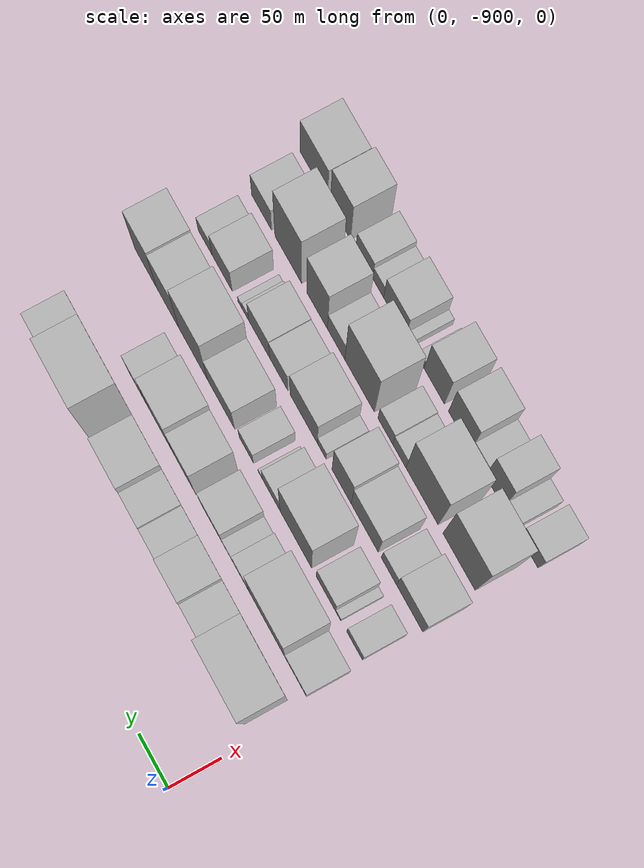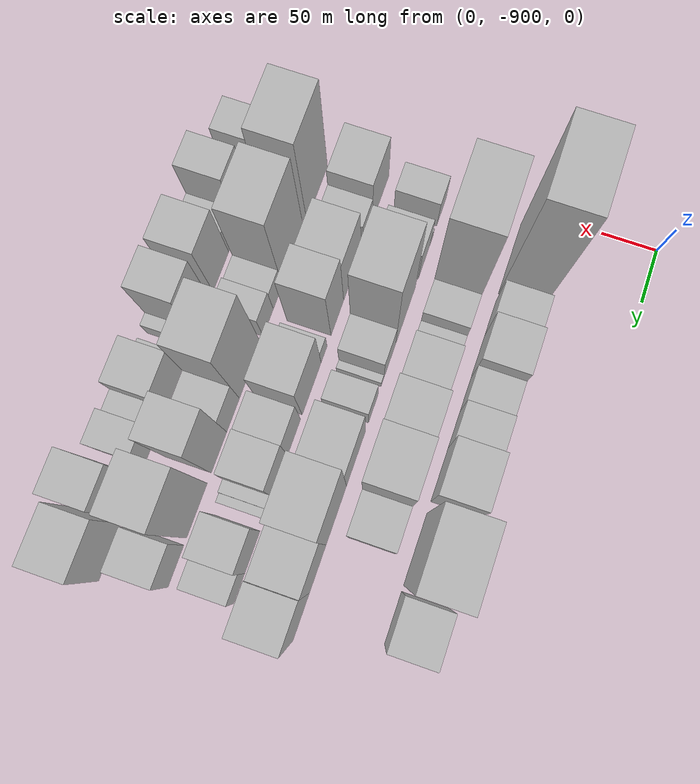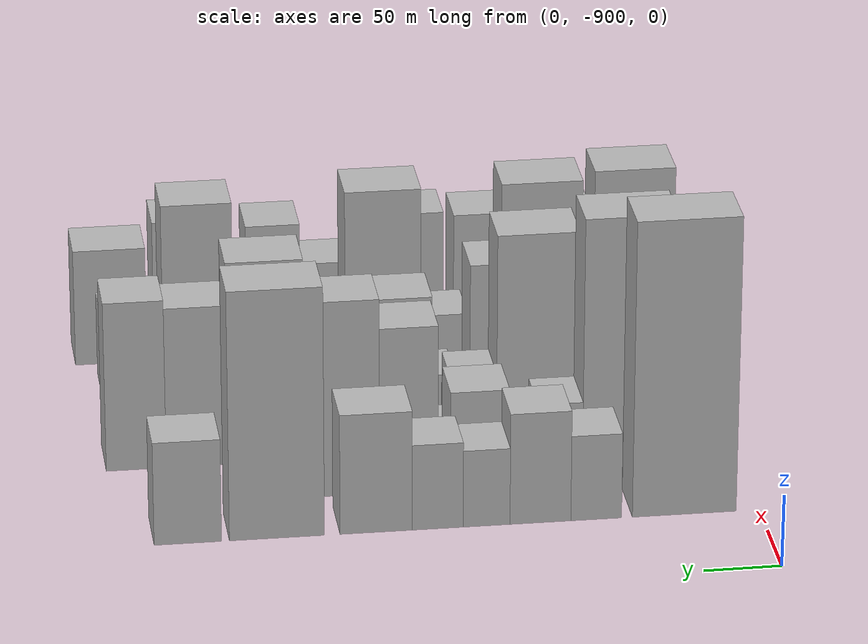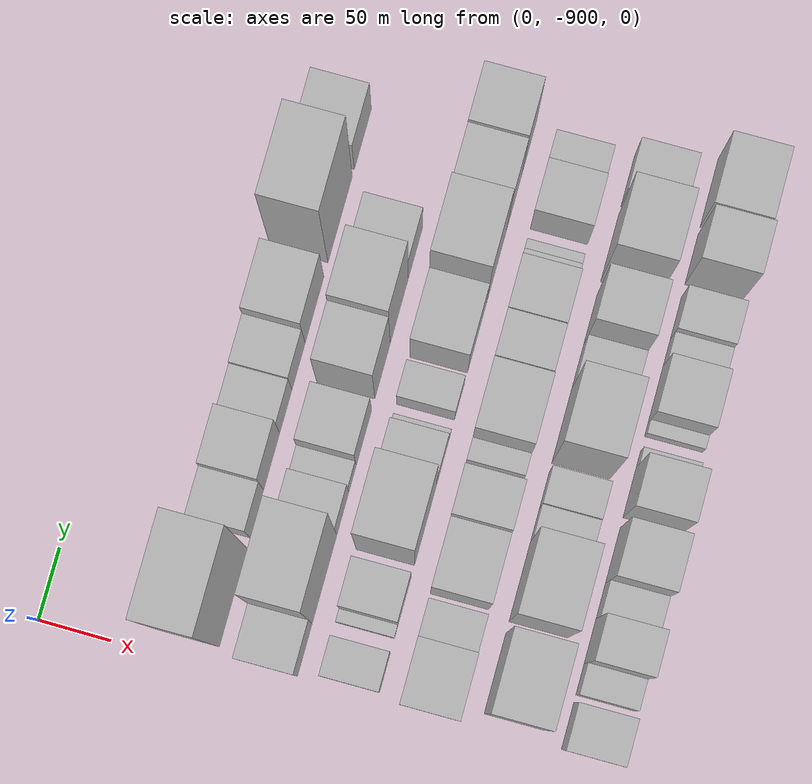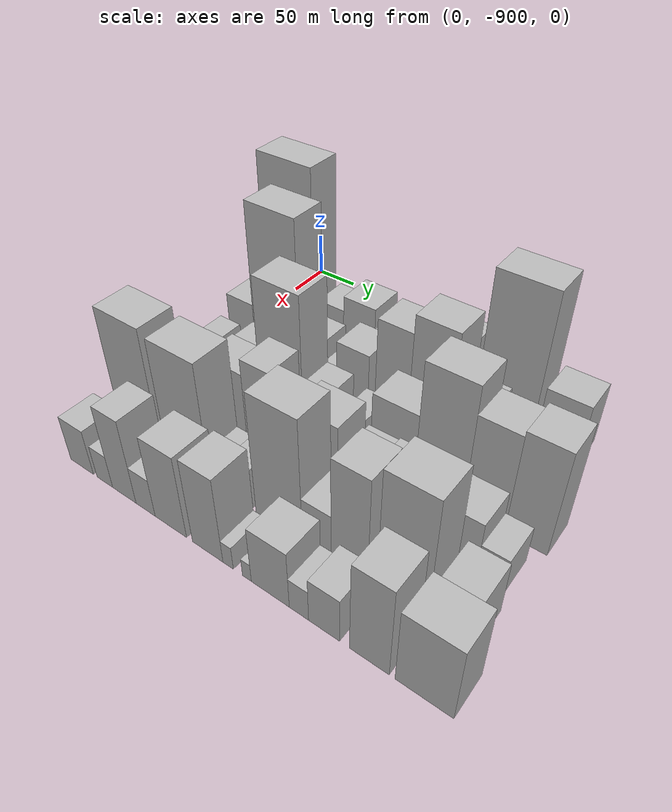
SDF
<sdf version="1.6">
 <world name="default">
  <model name="building_1">
   <static>1</static>
   <pose>100.0000 -851.1541 0 0.000000 0.000000 0.000000</pose>
   <link name="link">
    <pose>0 0 103.50 0 0 0</pose>
    <collision name="collision"><geometry><box><size>40.0000 67.6917 207.0000</size></box></geometry></collision>
    <visual name="visual">
     <cast_shadows>0</cast_shadows>
     <geometry><box><size>40.0000 67.6917 207.0000</size></box></geometry>
     <material>
      <script>
       <uri>model://HANNAS_wall/materials/scripts</uri>
       <uri>model://HANNAS_wall/materials/textures</uri>
       <name>vrc/HANNAS_wall</name>
      </script>
     </material>
    </visual>
   </link>
  </model>
  <model name="building_2">
   <static>1</static>
   <pose>100.0000 -793.8154 0 0.000000 0.000000 0.000000</pose>
   <link name="link">
    <pose>0 0 30.00 0 0 0</pose>
    <collision name="collision"><geometry><box><size>40.0000 32.9858 60.0000</size></box></geometry></collision>
    <visual name="visual">
     <cast_shadows>0</cast_shadows>
     <geometry><box><size>40.0000 32.9858 60.0000</size></box></geometry>
     <material>
      <script>
       <uri>model://HANNAS_wall/materials/scripts</uri>
       <uri>model://HANNAS_wall/materials/textures</uri>
       <name>vrc/HANNAS_wall</name>
      </script>
     </material>
    </visual>
   </link>
  </model>
  <model name="building_3">
   <static>1</static>
   <pose>100.0000 -757.5941 0 0.000000 0.000000 0.000000</pose>
   <link name="link">
    <pose>0 0 39.00 0 0 0</pose>
    <collision name="collision"><geometry><box><size>40.0000 39.4568 78.0000</size></box></geometry></collision>
    <visual name="visual">
     <cast_shadows>0</cast_shadows>
     <geometry><box><size>40.0000 39.4568 78.0000</size></box></geometry>
     <material>
      <script>
       <uri>model://HANNAS_wall/materials/scripts</uri>
       <uri>model://HANNAS_wall/materials/textures</uri>
       <name>vrc/HANNAS_wall</name>
      </script>
     </material>
    </visual>
   </link>
  </model>
  <model name="building_4">
   <static>1</static>
   <pose>100.0000 -722.7467 0 0.000000 0.000000 0.000000</pose>
   <link name="link">
    <pose>0 0 27.00 0 0 0</pose>
    <collision name="collision"><geometry><box><size>40.0000 30.2380 54.0000</size></box></geometry></collision>
    <visual name="visual">
     <cast_shadows>0</cast_shadows>
     <geometry><box><size>40.0000 30.2380 54.0000</size></box></geometry>
     <material>
      <script>
       <uri>model://HANNAS_wall/materials/scripts</uri>
       <uri>model://HANNAS_wall/materials/textures</uri>
       <name>vrc/HANNAS_wall</name>
      </script>
     </material>
    </visual>
   </link>
  </model>
  <model name="building_5">
   <static>1</static>
   <pose>100.0000 -691.2329 0 0.000000 0.000000 0.000000</pose>
   <link name="link">
    <pose>0 0 30.00 0 0 0</pose>
    <collision name="collision"><geometry><box><size>40.0000 32.7896 60.0000</size></box></geometry></collision>
    <visual name="visual">
     <cast_shadows>0</cast_shadows>
     <geometry><box><size>40.0000 32.7896 60.0000</size></box></geometry>
     <material>
      <script>
       <uri>model://HANNAS_wall/materials/scripts</uri>
       <uri>model://HANNAS_wall/materials/textures</uri>
       <name>vrc/HANNAS_wall</name>
      </script>
     </material>
    </visual>
   </link>
  </model>
  <model name="building_6">
   <static>1</static>
   <pose>100.0000 -651.5269 0 0.000000 0.000000 0.000000</pose>
   <link name="link">
    <pose>0 0 42.00 0 0 0</pose>
    <collision name="collision"><geometry><box><size>40.0000 46.6224 84.0000</size></box></geometry></collision>
    <visual name="visual">
     <cast_shadows>0</cast_shadows>
     <geometry><box><size>40.0000 46.6224 84.0000</size></box></geometry>
     <material>
      <script>
       <uri>model://HANNAS_wall/materials/scripts</uri>
       <uri>model://HANNAS_wall/materials/textures</uri>
       <name>vrc/HANNAS_wall</name>
      </script>
     </material>
    </visual>
   </link>
  </model>
  <model name="building_7">
   <static>1</static>
   <pose>100.0000 -587.7156 0 0.000000 0.000000 0.000000</pose>
   <link name="link">
    <pose>0 0 87.00 0 0 0</pose>
    <collision name="collision"><geometry><box><size>40.0000 61.0001 174.0000</size></box></geometry></collision>
    <visual name="visual">
     <cast_shadows>0</cast_shadows>
     <geometry><box><size>40.0000 61.0001 174.0000</size></box></geometry>
     <material>
      <script>
       <uri>model://HANNAS_wall/materials/scripts</uri>
       <uri>model://HANNAS_wall/materials/textures</uri>
       <name>vrc/HANNAS_wall</name>
      </script>
     </material>
    </visual>
   </link>
  </model>
  <model name="building_8">
   <static>1</static>
   <pose>100.0000 -530.6636 0 0.000000 0.000000 0.000000</pose>
   <link name="link">
    <pose>0 0 36.00 0 0 0</pose>
    <collision name="collision"><geometry><box><size>40.0000 43.1039 72.0000</size></box></geometry></collision>
    <visual name="visual">
     <cast_shadows>0</cast_shadows>
     <geometry><box><size>40.0000 43.1039 72.0000</size></box></geometry>
     <material>
      <script>
       <uri>model://HANNAS_wall/materials/scripts</uri>
       <uri>model://HANNAS_wall/materials/textures</uri>
       <name>vrc/HANNAS_wall</name>
      </script>
     </material>
    </visual>
   </link>
  </model>
  <model name="building_49">
   <static>1</static>
   <pose>155.0000 -871.9670 0 0.000000 0.000000 0.000000</pose>
   <link name="link">
    <pose>0 0 33.00 0 0 0</pose>
    <collision name="collision"><geometry><box><size>40.0000 36.0660 66.0000</size></box></geometry></collision>
    <visual name="visual">
     <cast_shadows>0</cast_shadows>
     <geometry><box><size>40.0000 36.0660 66.0000</size></box></geometry>
     <material>
      <script>
       <uri>model://HANNAS_wall/materials/scripts</uri>
       <uri>model://HANNAS_wall/materials/textures</uri>
       <name>vrc/HANNAS_wall</name>
      </script>
     </material>
    </visual>
   </link>
  </model>
  <model name="building_50">
   <static>1</static>
   <pose>155.0000 -823.6713 0 0.000000 0.000000 0.000000</pose>
   <link name="link">
    <pose>0 0 93.00 0 0 0</pose>
    <collision name="collision"><geometry><box><size>40.0000 60.5255 186.0000</size></box></geometry></collision>
    <visual name="visual">
     <cast_shadows>0</cast_shadows>
     <geometry><box><size>40.0000 60.5255 186.0000</size></box></geometry>
     <material>
      <script>
       <uri>model://HANNAS_wall/materials/scripts</uri>
       <uri>model://HANNAS_wall/materials/textures</uri>
       <name>vrc/HANNAS_wall</name>
      </script>
     </material>
    </visual>
   </link>
  </model>
  <model name="building_51">
   <static>1</static>
   <pose>155.0000 -778.5629 0 0.000000 0.000000 0.000000</pose>
   <link name="link">
    <pose>0 0 28.50 0 0 0</pose>
    <collision name="collision"><geometry><box><size>40.0000 29.6912 57.0000</size></box></geometry></collision>
    <visual name="visual">
     <cast_shadows>0</cast_shadows>
     <geometry><box><size>40.0000 29.6912 57.0000</size></box></geometry>
     <material>
      <script>
       <uri>model://HANNAS_wall/materials/scripts</uri>
       <uri>model://HANNAS_wall/materials/textures</uri>
       <name>vrc/HANNAS_wall</name>
      </script>
     </material>
    </visual>
   </link>
  </model>
  <model name="building_52">
   <static>1</static>
   <pose>155.0000 -754.5735 0 0.000000 0.000000 0.000000</pose>
   <link name="link">
    <pose>0 0 16.50 0 0 0</pose>
    <collision name="collision"><geometry><box><size>40.0000 18.2877 33.0000</size></box></geometry></collision>
    <visual name="visual">
     <cast_shadows>0</cast_shadows>
     <geometry><box><size>40.0000 18.2877 33.0000</size></box></geometry>
     <material>
      <script>
       <uri>model://HANNAS_wall/materials/scripts</uri>
       <uri>model://HANNAS_wall/materials/textures</uri>
       <name>vrc/HANNAS_wall</name>
      </script>
     </material>
    </visual>
   </link>
  </model>
  <model name="building_53">
   <static>1</static>
   <pose>155.0000 -726.1244 0 0.000000 0.000000 0.000000</pose>
   <link name="link">
    <pose>0 0 34.50 0 0 0</pose>
    <collision name="collision"><geometry><box><size>40.0000 38.6105 69.0000</size></box></geometry></collision>
    <visual name="visual">
     <cast_shadows>0</cast_shadows>
     <geometry><box><size>40.0000 38.6105 69.0000</size></box></geometry>
     <material>
      <script>
       <uri>model://HANNAS_wall/materials/scripts</uri>
       <uri>model://HANNAS_wall/materials/textures</uri>
       <name>vrc/HANNAS_wall</name>
      </script>
     </material>
    </visual>
   </link>
  </model>
  <model name="building_54">
   <static>1</static>
   <pose>155.0000 -679.6779 0 0.000000 0.000000 0.000000</pose>
   <link name="link">
    <pose>0 0 58.50 0 0 0</pose>
    <collision name="collision"><geometry><box><size>40.0000 38.2824 117.0000</size></box></geometry></collision>
    <visual name="visual">
     <cast_shadows>0</cast_shadows>
     <geometry><box><size>40.0000 38.2824 117.0000</size></box></geometry>
     <material>
      <script>
       <uri>model://HANNAS_wall/materials/scripts</uri>
       <uri>model://HANNAS_wall/materials/textures</uri>
       <name>vrc/HANNAS_wall</name>
      </script>
     </material>
    </visual>
   </link>
  </model>
  <model name="building_55">
   <static>1</static>
   <pose>155.0000 -637.8213 0 0.000000 0.000000 0.000000</pose>
   <link name="link">
    <pose>0 0 69.00 0 0 0</pose>
    <collision name="collision"><geometry><box><size>40.0000 45.4310 138.0000</size></box></geometry></collision>
    <visual name="visual">
     <cast_shadows>0</cast_shadows>
     <geometry><box><size>40.0000 45.4310 138.0000</size></box></geometry>
     <material>
      <script>
       <uri>model://HANNAS_wall/materials/scripts</uri>
       <uri>model://HANNAS_wall/materials/textures</uri>
       <name>vrc/HANNAS_wall</name>
      </script>
     </material>
    </visual>
   </link>
  </model>
  <model name="building_56">
   <static>1</static>
   <pose>155.0000 -596.8226 0 0.000000 0.000000 0.000000</pose>
   <link name="link">
    <pose>0 0 34.50 0 0 0</pose>
    <collision name="collision"><geometry><box><size>40.0000 36.5663 69.0000</size></box></geometry></collision>
    <visual name="visual">
     <cast_shadows>0</cast_shadows>
     <geometry><box><size>40.0000 36.5663 69.0000</size></box></geometry>
     <material>
      <script>
       <uri>model://HANNAS_wall/materials/scripts</uri>
       <uri>model://HANNAS_wall/materials/textures</uri>
       <name>vrc/HANNAS_wall</name>
      </script>
     </material>
    </visual>
   </link>
  </model>
  <model name="building_98">
   <static>1</static>
   <pose>210.0000 -872.5540 0 0.000000 0.000000 0.000000</pose>
   <link name="link">
    <pose>0 0 24.00 0 0 0</pose>
    <collision name="collision"><geometry><box><size>40.0000 26.8919 48.0000</size></box></geometry></collision>
    <visual name="visual">
     <cast_shadows>0</cast_shadows>
     <geometry><box><size>40.0000 26.8919 48.0000</size></box></geometry>
     <material>
      <script>
       <uri>model://HANNAS_wall/materials/scripts</uri>
       <uri>model://HANNAS_wall/materials/textures</uri>
       <name>vrc/HANNAS_wall</name>
      </script>
     </material>
    </visual>
   </link>
  </model>
  <model name="building_99">
   <static>1</static>
   <pose>210.0000 -844.6558 0 0.000000 0.000000 0.000000</pose>
   <link name="link">
    <pose>0 0 9.00 0 0 0</pose>
    <collision name="collision"><geometry><box><size>40.0000 8.9046 18.0000</size></box></geometry></collision>
    <visual name="visual">
     <cast_shadows>0</cast_shadows>
     <geometry><box><size>40.0000 8.9046 18.0000</size></box></geometry>
     <material>
      <script>
       <uri>model://HANNAS_wall/materials/scripts</uri>
       <uri>model://HANNAS_wall/materials/textures</uri>
       <name>vrc/HANNAS_wall</name>
      </script>
     </material>
    </visual>
   </link>
  </model>
  <model name="building_100">
   <static>1</static>
   <pose>210.0000 -823.6231 0 0.000000 0.000000 0.000000</pose>
   <link name="link">
    <pose>0 0 30.00 0 0 0</pose>
    <collision name="collision"><geometry><box><size>40.0000 33.1608 60.0000</size></box></geometry></collision>
    <visual name="visual">
     <cast_shadows>0</cast_shadows>
     <geometry><box><size>40.0000 33.1608 60.0000</size></box></geometry>
     <material>
      <script>
       <uri>model://HANNAS_wall/materials/scripts</uri>
       <uri>model://HANNAS_wall/materials/textures</uri>
       <name>vrc/HANNAS_wall</name>
      </script>
     </material>
    </visual>
   </link>
  </model>
  <model name="building_101">
   <static>1</static>
   <pose>210.0000 -771.9711 0 0.000000 0.000000 0.000000</pose>
   <link name="link">
    <pose>0 0 76.50 0 0 0</pose>
    <collision name="collision"><geometry><box><size>40.0000 54.1432 153.0000</size></box></geometry></collision>
    <visual name="visual">
     <cast_shadows>0</cast_shadows>
     <geometry><box><size>40.0000 54.1432 153.0000</size></box></geometry>
     <material>
      <script>
       <uri>model://HANNAS_wall/materials/scripts</uri>
       <uri>model://HANNAS_wall/materials/textures</uri>
       <name>vrc/HANNAS_wall</name>
      </script>
     </material>
    </visual>
   </link>
  </model>
  <model name="building_102">
   <static>1</static>
   <pose>210.0000 -729.3932 0 0.000000 0.000000 0.000000</pose>
   <link name="link">
    <pose>0 0 27.00 0 0 0</pose>
    <collision name="collision"><geometry><box><size>40.0000 31.0125 54.0000</size></box></geometry></collision>
    <visual name="visual">
     <cast_shadows>0</cast_shadows>
     <geometry><box><size>40.0000 31.0125 54.0000</size></box></geometry>
     <material>
      <script>
       <uri>model://HANNAS_wall/materials/scripts</uri>
       <uri>model://HANNAS_wall/materials/textures</uri>
       <name>vrc/HANNAS_wall</name>
      </script>
     </material>
    </visual>
   </link>
  </model>
  <model name="building_103">
   <static>1</static>
   <pose>210.0000 -710.1723 0 0.000000 0.000000 0.000000</pose>
   <link name="link">
    <pose>0 0 7.50 0 0 0</pose>
    <collision name="collision"><geometry><box><size>40.0000 7.4293 15.0000</size></box></geometry></collision>
    <visual name="visual">
     <cast_shadows>0</cast_shadows>
     <geometry><box><size>40.0000 7.4293 15.0000</size></box></geometry>
     <material>
      <script>
       <uri>model://HANNAS_wall/materials/scripts</uri>
       <uri>model://HANNAS_wall/materials/textures</uri>
       <name>vrc/HANNAS_wall</name>
      </script>
     </material>
    </visual>
   </link>
  </model>
  <model name="building_104">
   <static>1</static>
   <pose>210.0000 -685.9961 0 0.000000 0.000000 0.000000</pose>
   <link name="link">
    <pose>0 0 22.50 0 0 0</pose>
    <collision name="collision"><geometry><box><size>40.0000 24.9231 45.0000</size></box></geometry></collision>
    <visual name="visual">
     <cast_shadows>0</cast_shadows>
     <geometry><box><size>40.0000 24.9231 45.0000</size></box></geometry>
     <material>
      <script>
       <uri>model://HANNAS_wall/materials/scripts</uri>
       <uri>model://HANNAS_wall/materials/textures</uri>
       <name>vrc/HANNAS_wall</name>
      </script>
     </material>
    </visual>
   </link>
  </model>
  <model name="building_105">
   <static>1</static>
   <pose>210.0000 -641.6458 0 0.000000 0.000000 0.000000</pose>
   <link name="link">
    <pose>0 0 42.00 0 0 0</pose>
    <collision name="collision"><geometry><box><size>40.0000 47.7777 84.0000</size></box></geometry></collision>
    <visual name="visual">
     <cast_shadows>0</cast_shadows>
     <geometry><box><size>40.0000 47.7777 84.0000</size></box></geometry>
     <material>
      <script>
       <uri>model://HANNAS_wall/materials/scripts</uri>
       <uri>model://HANNAS_wall/materials/textures</uri>
       <name>vrc/HANNAS_wall</name>
      </script>
     </material>
    </visual>
   </link>
  </model>
  <model name="building_106">
   <static>1</static>
   <pose>210.0000 -592.4276 0 0.000000 0.000000 0.000000</pose>
   <link name="link">
    <pose>0 0 72.00 0 0 0</pose>
    <collision name="collision"><geometry><box><size>40.0000 50.6587 144.0000</size></box></geometry></collision>
    <visual name="visual">
     <cast_shadows>0</cast_shadows>
     <geometry><box><size>40.0000 50.6587 144.0000</size></box></geometry>
     <material>
      <script>
       <uri>model://HANNAS_wall/materials/scripts</uri>
       <uri>model://HANNAS_wall/materials/textures</uri>
       <name>vrc/HANNAS_wall</name>
      </script>
     </material>
    </visual>
   </link>
  </model>
  <model name="building_107">
   <static>1</static>
   <pose>210.0000 -546.9638 0 0.000000 0.000000 0.000000</pose>
   <link name="link">
    <pose>0 0 57.00 0 0 0</pose>
    <collision name="collision"><geometry><box><size>40.0000 40.2688 114.0000</size></box></geometry></collision>
    <visual name="visual">
     <cast_shadows>0</cast_shadows>
     <geometry><box><size>40.0000 40.2688 114.0000</size></box></geometry>
     <material>
      <script>
       <uri>model://HANNAS_wall/materials/scripts</uri>
       <uri>model://HANNAS_wall/materials/textures</uri>
       <name>vrc/HANNAS_wall</name>
      </script>
     </material>
    </visual>
   </link>
  </model>
  <model name="building_108">
   <static>1</static>
   <pose>210.0000 -507.1840 0 0.000000 0.000000 0.000000</pose>
   <link name="link">
    <pose>0 0 60.00 0 0 0</pose>
    <collision name="collision"><geometry><box><size>40.0000 39.2908 120.0000</size></box></geometry></collision>
    <visual name="visual">
     <cast_shadows>0</cast_shadows>
     <geometry><box><size>40.0000 39.2908 120.0000</size></box></geometry>
     <material>
      <script>
       <uri>model://HANNAS_wall/materials/scripts</uri>
       <uri>model://HANNAS_wall/materials/textures</uri>
       <name>vrc/HANNAS_wall</name>
      </script>
     </material>
    </visual>
   </link>
  </model>
  <model name="building_151">
   <static>1</static>
   <pose>265.0000 -867.6880 0 0.000000 0.000000 0.000000</pose>
   <link name="link">
    <pose>0 0 37.50 0 0 0</pose>
    <collision name="collision"><geometry><box><size>40.0000 44.6241 75.0000</size></box></geometry></collision>
    <visual name="visual">
     <cast_shadows>0</cast_shadows>
     <geometry><box><size>40.0000 44.6241 75.0000</size></box></geometry>
     <material>
      <script>
       <uri>model://HANNAS_wall/materials/scripts</uri>
       <uri>model://HANNAS_wall/materials/textures</uri>
       <name>vrc/HANNAS_wall</name>
      </script>
     </material>
    </visual>
   </link>
  </model>
  <model name="building_152">
   <static>1</static>
   <pose>265.0000 -832.3222 0 0.000000 0.000000 0.000000</pose>
   <link name="link">
    <pose>0 0 24.00 0 0 0</pose>
    <collision name="collision"><geometry><box><size>40.0000 26.1075 48.0000</size></box></geometry></collision>
    <visual name="visual">
     <cast_shadows>0</cast_shadows>
     <geometry><box><size>40.0000 26.1075 48.0000</size></box></geometry>
     <material>
      <script>
       <uri>model://HANNAS_wall/materials/scripts</uri>
       <uri>model://HANNAS_wall/materials/textures</uri>
       <name>vrc/HANNAS_wall</name>
      </script>
     </material>
    </visual>
   </link>
  </model>
  <model name="building_153">
   <static>1</static>
   <pose>265.0000 -791.0340 0 0.000000 0.000000 0.000000</pose>
   <link name="link">
    <pose>0 0 45.00 0 0 0</pose>
    <collision name="collision"><geometry><box><size>40.0000 46.4689 90.0000</size></box></geometry></collision>
    <visual name="visual">
     <cast_shadows>0</cast_shadows>
     <geometry><box><size>40.0000 46.4689 90.0000</size></box></geometry>
     <material>
      <script>
       <uri>model://HANNAS_wall/materials/scripts</uri>
       <uri>model://HANNAS_wall/materials/textures</uri>
       <name>vrc/HANNAS_wall</name>
      </script>
     </material>
    </visual>
   </link>
  </model>
  <model name="building_154">
   <static>1</static>
   <pose>265.0000 -751.3262 0 0.000000 0.000000 0.000000</pose>
   <link name="link">
    <pose>0 0 54.00 0 0 0</pose>
    <collision name="collision"><geometry><box><size>40.0000 32.9468 108.0000</size></box></geometry></collision>
    <visual name="visual">
     <cast_shadows>0</cast_shadows>
     <geometry><box><size>40.0000 32.9468 108.0000</size></box></geometry>
     <material>
      <script>
       <uri>model://HANNAS_wall/materials/scripts</uri>
       <uri>model://HANNAS_wall/materials/textures</uri>
       <name>vrc/HANNAS_wall</name>
      </script>
     </material>
    </visual>
   </link>
  </model>
  <model name="building_155">
   <static>1</static>
   <pose>265.0000 -717.1857 0 0.000000 0.000000 0.000000</pose>
   <link name="link">
    <pose>0 0 15.00 0 0 0</pose>
    <collision name="collision"><geometry><box><size>40.0000 15.3343 30.0000</size></box></geometry></collision>
    <visual name="visual">
     <cast_shadows>0</cast_shadows>
     <geometry><box><size>40.0000 15.3343 30.0000</size></box></geometry>
     <material>
      <script>
       <uri>model://HANNAS_wall/materials/scripts</uri>
       <uri>model://HANNAS_wall/materials/textures</uri>
       <name>vrc/HANNAS_wall</name>
      </script>
     </material>
    </visual>
   </link>
  </model>
  <model name="building_156">
   <static>1</static>
   <pose>265.0000 -685.7715 0 0.000000 0.000000 0.000000</pose>
   <link name="link">
    <pose>0 0 43.50 0 0 0</pose>
    <collision name="collision"><geometry><box><size>40.0000 47.4941 87.0000</size></box></geometry></collision>
    <visual name="visual">
     <cast_shadows>0</cast_shadows>
     <geometry><box><size>40.0000 47.4941 87.0000</size></box></geometry>
     <material>
      <script>
       <uri>model://HANNAS_wall/materials/scripts</uri>
       <uri>model://HANNAS_wall/materials/textures</uri>
       <name>vrc/HANNAS_wall</name>
      </script>
     </material>
    </visual>
   </link>
  </model>
  <model name="building_157">
   <static>1</static>
   <pose>265.0000 -641.9753 0 0.000000 0.000000 0.000000</pose>
   <link name="link">
    <pose>0 0 31.50 0 0 0</pose>
    <collision name="collision"><geometry><box><size>40.0000 32.0983 63.0000</size></box></geometry></collision>
    <visual name="visual">
     <cast_shadows>0</cast_shadows>
     <geometry><box><size>40.0000 32.0983 63.0000</size></box></geometry>
     <material>
      <script>
       <uri>model://HANNAS_wall/materials/scripts</uri>
       <uri>model://HANNAS_wall/materials/textures</uri>
       <name>vrc/HANNAS_wall</name>
      </script>
     </material>
    </visual>
   </link>
  </model>
  <model name="building_158">
   <static>1</static>
   <pose>265.0000 -607.5964 0 0.000000 0.000000 0.000000</pose>
   <link name="link">
    <pose>0 0 33.00 0 0 0</pose>
    <collision name="collision"><geometry><box><size>40.0000 36.6595 66.0000</size></box></geometry></collision>
    <visual name="visual">
     <cast_shadows>0</cast_shadows>
     <geometry><box><size>40.0000 36.6595 66.0000</size></box></geometry>
     <material>
      <script>
       <uri>model://HANNAS_wall/materials/scripts</uri>
       <uri>model://HANNAS_wall/materials/textures</uri>
       <name>vrc/HANNAS_wall</name>
      </script>
     </material>
    </visual>
   </link>
  </model>
  <model name="building_159">
   <static>1</static>
   <pose>265.0000 -583.6200 0 0.000000 0.000000 0.000000</pose>
   <link name="link">
    <pose>0 0 12.00 0 0 0</pose>
    <collision name="collision"><geometry><box><size>40.0000 11.2932 24.0000</size></box></geometry></collision>
    <visual name="visual">
     <cast_shadows>0</cast_shadows>
     <geometry><box><size>40.0000 11.2932 24.0000</size></box></geometry>
     <material>
      <script>
       <uri>model://HANNAS_wall/materials/scripts</uri>
       <uri>model://HANNAS_wall/materials/textures</uri>
       <name>vrc/HANNAS_wall</name>
      </script>
     </material>
    </visual>
   </link>
  </model>
  <model name="building_160">
   <static>1</static>
   <pose>265.0000 -574.0172 0 0.000000 0.000000 0.000000</pose>
   <link name="link">
    <pose>0 0 9.00 0 0 0</pose>
    <collision name="collision"><geometry><box><size>40.0000 7.9125 18.0000</size></box></geometry></collision>
    <visual name="visual">
     <cast_shadows>0</cast_shadows>
     <geometry><box><size>40.0000 7.9125 18.0000</size></box></geometry>
     <material>
      <script>
       <uri>model://HANNAS_wall/materials/scripts</uri>
       <uri>model://HANNAS_wall/materials/textures</uri>
       <name>vrc/HANNAS_wall</name>
      </script>
     </material>
    </visual>
   </link>
  </model>
  <model name="building_161">
   <static>1</static>
   <pose>265.0000 -542.1251 0 0.000000 0.000000 0.000000</pose>
   <link name="link">
    <pose>0 0 33.00 0 0 0</pose>
    <collision name="collision"><geometry><box><size>40.0000 35.8718 66.0000</size></box></geometry></collision>
    <visual name="visual">
     <cast_shadows>0</cast_shadows>
     <geometry><box><size>40.0000 35.8718 66.0000</size></box></geometry>
     <material>
      <script>
       <uri>model://HANNAS_wall/materials/scripts</uri>
       <uri>model://HANNAS_wall/materials/textures</uri>
       <name>vrc/HANNAS_wall</name>
      </script>
     </material>
    </visual>
   </link>
  </model>
  <model name="building_162">
   <static>1</static>
   <pose>265.0000 -511.6577 0 0.000000 0.000000 0.000000</pose>
   <link name="link">
    <pose>0 0 21.00 0 0 0</pose>
    <collision name="collision"><geometry><box><size>40.0000 25.0628 42.0000</size></box></geometry></collision>
    <visual name="visual">
     <cast_shadows>0</cast_shadows>
     <geometry><box><size>40.0000 25.0628 42.0000</size></box></geometry>
     <material>
      <script>
       <uri>model://HANNAS_wall/materials/scripts</uri>
       <uri>model://HANNAS_wall/materials/textures</uri>
       <name>vrc/HANNAS_wall</name>
      </script>
     </material>
    </visual>
   </link>
  </model>
  <model name="building_210">
   <static>1</static>
   <pose>320.0000 -853.6707 0 0.000000 0.000000 0.000000</pose>
   <link name="link">
    <pose>0 0 73.50 0 0 0</pose>
    <collision name="collision"><geometry><box><size>40.0000 54.6586 147.0000</size></box></geometry></collision>
    <visual name="visual">
     <cast_shadows>0</cast_shadows>
     <geometry><box><size>40.0000 54.6586 147.0000</size></box></geometry>
     <material>
      <script>
       <uri>model://HANNAS_wall/materials/scripts</uri>
       <uri>model://HANNAS_wall/materials/textures</uri>
       <name>vrc/HANNAS_wall</name>
      </script>
     </material>
    </visual>
   </link>
  </model>
  <model name="building_211">
   <static>1</static>
   <pose>320.0000 -790.9485 0 0.000000 0.000000 0.000000</pose>
   <link name="link">
    <pose>0 0 70.50 0 0 0</pose>
    <collision name="collision"><geometry><box><size>40.0000 54.7858 141.0000</size></box></geometry></collision>
    <visual name="visual">
     <cast_shadows>0</cast_shadows>
     <geometry><box><size>40.0000 54.7858 141.0000</size></box></geometry>
     <material>
      <script>
       <uri>model://HANNAS_wall/materials/scripts</uri>
       <uri>model://HANNAS_wall/materials/textures</uri>
       <name>vrc/HANNAS_wall</name>
      </script>
     </material>
    </visual>
   </link>
  </model>
  <model name="building_212">
   <static>1</static>
   <pose>320.0000 -752.1840 0 0.000000 0.000000 0.000000</pose>
   <link name="link">
    <pose>0 0 21.00 0 0 0</pose>
    <collision name="collision"><geometry><box><size>40.0000 22.7432 42.0000</size></box></geometry></collision>
    <visual name="visual">
     <cast_shadows>0</cast_shadows>
     <geometry><box><size>40.0000 22.7432 42.0000</size></box></geometry>
     <material>
      <script>
       <uri>model://HANNAS_wall/materials/scripts</uri>
       <uri>model://HANNAS_wall/materials/textures</uri>
       <name>vrc/HANNAS_wall</name>
      </script>
     </material>
    </visual>
   </link>
  </model>
  <model name="building_213">
   <static>1</static>
   <pose>320.0000 -728.0495 0 0.000000 0.000000 0.000000</pose>
   <link name="link">
    <pose>0 0 24.00 0 0 0</pose>
    <collision name="collision"><geometry><box><size>40.0000 25.5258 48.0000</size></box></geometry></collision>
    <visual name="visual">
     <cast_shadows>0</cast_shadows>
     <geometry><box><size>40.0000 25.5258 48.0000</size></box></geometry>
     <material>
      <script>
       <uri>model://HANNAS_wall/materials/scripts</uri>
       <uri>model://HANNAS_wall/materials/textures</uri>
       <name>vrc/HANNAS_wall</name>
      </script>
     </material>
    </visual>
   </link>
  </model>
  <model name="building_214">
   <static>1</static>
   <pose>320.0000 -683.5983 0 0.000000 0.000000 0.000000</pose>
   <link name="link">
    <pose>0 0 70.50 0 0 0</pose>
    <collision name="collision"><geometry><box><size>40.0000 51.3766 141.0000</size></box></geometry></collision>
    <visual name="visual">
     <cast_shadows>0</cast_shadows>
     <geometry><box><size>40.0000 51.3766 141.0000</size></box></geometry>
     <material>
      <script>
       <uri>model://HANNAS_wall/materials/scripts</uri>
       <uri>model://HANNAS_wall/materials/textures</uri>
       <name>vrc/HANNAS_wall</name>
      </script>
     </material>
    </visual>
   </link>
  </model>
  <model name="building_215">
   <static>1</static>
   <pose>320.0000 -642.8002 0 0.000000 0.000000 0.000000</pose>
   <link name="link">
    <pose>0 0 27.00 0 0 0</pose>
    <collision name="collision"><geometry><box><size>40.0000 30.2194 54.0000</size></box></geometry></collision>
    <visual name="visual">
     <cast_shadows>0</cast_shadows>
     <geometry><box><size>40.0000 30.2194 54.0000</size></box></geometry>
     <material>
      <script>
       <uri>model://HANNAS_wall/materials/scripts</uri>
       <uri>model://HANNAS_wall/materials/textures</uri>
       <name>vrc/HANNAS_wall</name>
      </script>
     </material>
    </visual>
   </link>
  </model>
  <model name="building_216">
   <static>1</static>
   <pose>320.0000 -609.5357 0 0.000000 0.000000 0.000000</pose>
   <link name="link">
    <pose>0 0 60.00 0 0 0</pose>
    <collision name="collision"><geometry><box><size>40.0000 36.3097 120.0000</size></box></geometry></collision>
    <visual name="visual">
     <cast_shadows>0</cast_shadows>
     <geometry><box><size>40.0000 36.3097 120.0000</size></box></geometry>
     <material>
      <script>
       <uri>model://HANNAS_wall/materials/scripts</uri>
       <uri>model://HANNAS_wall/materials/textures</uri>
       <name>vrc/HANNAS_wall</name>
      </script>
     </material>
    </visual>
   </link>
  </model>
  <model name="building_217">
   <static>1</static>
   <pose>320.0000 -558.7782 0 0.000000 0.000000 0.000000</pose>
   <link name="link">
    <pose>0 0 69.00 0 0 0</pose>
    <collision name="collision"><geometry><box><size>40.0000 47.2053 138.0000</size></box></geometry></collision>
    <visual name="visual">
     <cast_shadows>0</cast_shadows>
     <geometry><box><size>40.0000 47.2053 138.0000</size></box></geometry>
     <material>
      <script>
       <uri>model://HANNAS_wall/materials/scripts</uri>
       <uri>model://HANNAS_wall/materials/textures</uri>
       <name>vrc/HANNAS_wall</name>
      </script>
     </material>
    </visual>
   </link>
  </model>
  <model name="building_218">
   <static>1</static>
   <pose>320.0000 -511.4570 0 0.000000 0.000000 0.000000</pose>
   <link name="link">
    <pose>0 0 30.00 0 0 0</pose>
    <collision name="collision"><geometry><box><size>40.0000 35.4372 60.0000</size></box></geometry></collision>
    <visual name="visual">
     <cast_shadows>0</cast_shadows>
     <geometry><box><size>40.0000 35.4372 60.0000</size></box></geometry>
     <material>
      <script>
       <uri>model://HANNAS_wall/materials/scripts</uri>
       <uri>model://HANNAS_wall/materials/textures</uri>
       <name>vrc/HANNAS_wall</name>
      </script>
     </material>
    </visual>
   </link>
  </model>
  <model name="building_256">
   <static>1</static>
   <pose>375.0000 -874.0794 0 0.000000 0.000000 0.000000</pose>
   <link name="link">
    <pose>0 0 27.00 0 0 0</pose>
    <collision name="collision"><geometry><box><size>40.0000 31.8411 54.0000</size></box></geometry></collision>
    <visual name="visual">
     <cast_shadows>0</cast_shadows>
     <geometry><box><size>40.0000 31.8411 54.0000</size></box></geometry>
     <material>
      <script>
       <uri>model://HANNAS_wall/materials/scripts</uri>
       <uri>model://HANNAS_wall/materials/textures</uri>
       <name>vrc/HANNAS_wall</name>
      </script>
     </material>
    </visual>
   </link>
  </model>
  <model name="building_257">
   <static>1</static>
   <pose>375.0000 -842.4995 0 0.000000 0.000000 0.000000</pose>
   <link name="link">
    <pose>0 0 19.50 0 0 0</pose>
    <collision name="collision"><geometry><box><size>40.0000 21.3187 39.0000</size></box></geometry></collision>
    <visual name="visual">
     <cast_shadows>0</cast_shadows>
     <geometry><box><size>40.0000 21.3187 39.0000</size></box></geometry>
     <material>
      <script>
       <uri>model://HANNAS_wall/materials/scripts</uri>
       <uri>model://HANNAS_wall/materials/textures</uri>
       <name>vrc/HANNAS_wall</name>
      </script>
     </material>
    </visual>
   </link>
  </model>
  <model name="building_258">
   <static>1</static>
   <pose>375.0000 -816.4690 0 0.000000 0.000000 0.000000</pose>
   <link name="link">
    <pose>0 0 49.50 0 0 0</pose>
    <collision name="collision"><geometry><box><size>40.0000 30.7425 99.0000</size></box></geometry></collision>
    <visual name="visual">
     <cast_shadows>0</cast_shadows>
     <geometry><box><size>40.0000 30.7425 99.0000</size></box></geometry>
     <material>
      <script>
       <uri>model://HANNAS_wall/materials/scripts</uri>
       <uri>model://HANNAS_wall/materials/textures</uri>
       <name>vrc/HANNAS_wall</name>
      </script>
     </material>
    </visual>
   </link>
  </model>
  <model name="building_259">
   <static>1</static>
   <pose>375.0000 -788.9962 0 0.000000 0.000000 0.000000</pose>
   <link name="link">
    <pose>0 0 22.50 0 0 0</pose>
    <collision name="collision"><geometry><box><size>40.0000 24.2031 45.0000</size></box></geometry></collision>
    <visual name="visual">
     <cast_shadows>0</cast_shadows>
     <geometry><box><size>40.0000 24.2031 45.0000</size></box></geometry>
     <material>
      <script>
       <uri>model://HANNAS_wall/materials/scripts</uri>
       <uri>model://HANNAS_wall/materials/textures</uri>
       <name>vrc/HANNAS_wall</name>
      </script>
     </material>
    </visual>
   </link>
  </model>
  <model name="building_260">
   <static>1</static>
   <pose>375.0000 -757.8362 0 0.000000 0.000000 0.000000</pose>
   <link name="link">
    <pose>0 0 48.00 0 0 0</pose>
    <collision name="collision"><geometry><box><size>40.0000 38.1169 96.0000</size></box></geometry></collision>
    <visual name="visual">
     <cast_shadows>0</cast_shadows>
     <geometry><box><size>40.0000 38.1169 96.0000</size></box></geometry>
     <material>
      <script>
       <uri>model://HANNAS_wall/materials/scripts</uri>
       <uri>model://HANNAS_wall/materials/textures</uri>
       <name>vrc/HANNAS_wall</name>
      </script>
     </material>
    </visual>
   </link>
  </model>
  <model name="building_261">
   <static>1</static>
   <pose>375.0000 -714.4105 0 0.000000 0.000000 0.000000</pose>
   <link name="link">
    <pose>0 0 49.50 0 0 0</pose>
    <collision name="collision"><geometry><box><size>40.0000 34.7345 99.0000</size></box></geometry></collision>
    <visual name="visual">
     <cast_shadows>0</cast_shadows>
     <geometry><box><size>40.0000 34.7345 99.0000</size></box></geometry>
     <material>
      <script>
       <uri>model://HANNAS_wall/materials/scripts</uri>
       <uri>model://HANNAS_wall/materials/textures</uri>
       <name>vrc/HANNAS_wall</name>
      </script>
     </material>
    </visual>
   </link>
  </model>
  <model name="building_262">
   <static>1</static>
   <pose>375.0000 -691.3096 0 0.000000 0.000000 0.000000</pose>
   <link name="link">
    <pose>0 0 13.50 0 0 0</pose>
    <collision name="collision"><geometry><box><size>40.0000 11.4672 27.0000</size></box></geometry></collision>
    <visual name="visual">
     <cast_shadows>0</cast_shadows>
     <geometry><box><size>40.0000 11.4672 27.0000</size></box></geometry>
     <material>
      <script>
       <uri>model://HANNAS_wall/materials/scripts</uri>
       <uri>model://HANNAS_wall/materials/textures</uri>
       <name>vrc/HANNAS_wall</name>
      </script>
     </material>
    </visual>
   </link>
  </model>
  <model name="building_263">
   <static>1</static>
   <pose>375.0000 -670.8340 0 0.000000 0.000000 0.000000</pose>
   <link name="link">
    <pose>0 0 10.50 0 0 0</pose>
    <collision name="collision"><geometry><box><size>40.0000 9.4840 21.0000</size></box></geometry></collision>
    <visual name="visual">
     <cast_shadows>0</cast_shadows>
     <geometry><box><size>40.0000 9.4840 21.0000</size></box></geometry>
     <material>
      <script>
       <uri>model://HANNAS_wall/materials/scripts</uri>
       <uri>model://HANNAS_wall/materials/textures</uri>
       <name>vrc/HANNAS_wall</name>
      </script>
     </material>
    </visual>
   </link>
  </model>
  <model name="building_264">
   <static>1</static>
   <pose>375.0000 -646.5048 0 0.000000 0.000000 0.000000</pose>
   <link name="link">
    <pose>0 0 33.00 0 0 0</pose>
    <collision name="collision"><geometry><box><size>40.0000 39.1745 66.0000</size></box></geometry></collision>
    <visual name="visual">
     <cast_shadows>0</cast_shadows>
     <geometry><box><size>40.0000 39.1745 66.0000</size></box></geometry>
     <material>
      <script>
       <uri>model://HANNAS_wall/materials/scripts</uri>
       <uri>model://HANNAS_wall/materials/textures</uri>
       <name>vrc/HANNAS_wall</name>
      </script>
     </material>
    </visual>
   </link>
  </model>
  <model name="building_265">
   <static>1</static>
   <pose>375.0000 -617.3551 0 0.000000 0.000000 0.000000</pose>
   <link name="link">
    <pose>0 0 18.00 0 0 0</pose>
    <collision name="collision"><geometry><box><size>40.0000 19.1249 36.0000</size></box></geometry></collision>
    <visual name="visual">
     <cast_shadows>0</cast_shadows>
     <geometry><box><size>40.0000 19.1249 36.0000</size></box></geometry>
     <material>
      <script>
       <uri>model://HANNAS_wall/materials/scripts</uri>
       <uri>model://HANNAS_wall/materials/textures</uri>
       <name>vrc/HANNAS_wall</name>
      </script>
     </material>
    </visual>
   </link>
  </model>
  <model name="building_266">
   <static>1</static>
   <pose>375.0000 -592.9849 0 0.000000 0.000000 0.000000</pose>
   <link name="link">
    <pose>0 0 25.50 0 0 0</pose>
    <collision name="collision"><geometry><box><size>40.0000 29.6154 51.0000</size></box></geometry></collision>
    <visual name="visual">
     <cast_shadows>0</cast_shadows>
     <geometry><box><size>40.0000 29.6154 51.0000</size></box></geometry>
     <material>
      <script>
       <uri>model://HANNAS_wall/materials/scripts</uri>
       <uri>model://HANNAS_wall/materials/textures</uri>
       <name>vrc/HANNAS_wall</name>
      </script>
     </material>
    </visual>
   </link>
  </model>
  <model name="building_267">
   <static>1</static>
   <pose>375.0000 -551.4141 0 0.000000 0.000000 0.000000</pose>
   <link name="link">
    <pose>0 0 51.00 0 0 0</pose>
    <collision name="collision"><geometry><box><size>40.0000 35.5263 102.0000</size></box></geometry></collision>
    <visual name="visual">
     <cast_shadows>0</cast_shadows>
     <geometry><box><size>40.0000 35.5263 102.0000</size></box></geometry>
     <material>
      <script>
       <uri>model://HANNAS_wall/materials/scripts</uri>
       <uri>model://HANNAS_wall/materials/textures</uri>
       <name>vrc/HANNAS_wall</name>
      </script>
     </material>
    </visual>
   </link>
  </model>
  <model name="building_268">
   <static>1</static>
   <pose>375.0000 -504.3028 0 0.000000 0.000000 0.000000</pose>
   <link name="link">
    <pose>0 0 42.00 0 0 0</pose>
    <collision name="collision"><geometry><box><size>40.0000 48.6962 84.0000</size></box></geometry></collision>
    <visual name="visual">
     <cast_shadows>0</cast_shadows>
     <geometry><box><size>40.0000 48.6962 84.0000</size></box></geometry>
     <material>
      <script>
       <uri>model://HANNAS_wall/materials/scripts</uri>
       <uri>model://HANNAS_wall/materials/textures</uri>
       <name>vrc/HANNAS_wall</name>
      </script>
     </material>
    </visual>
   </link>
  </model>
 </world>
</sdf>
